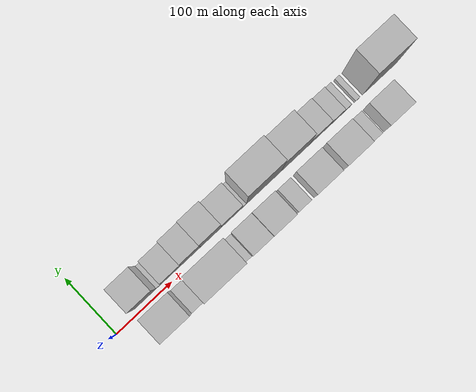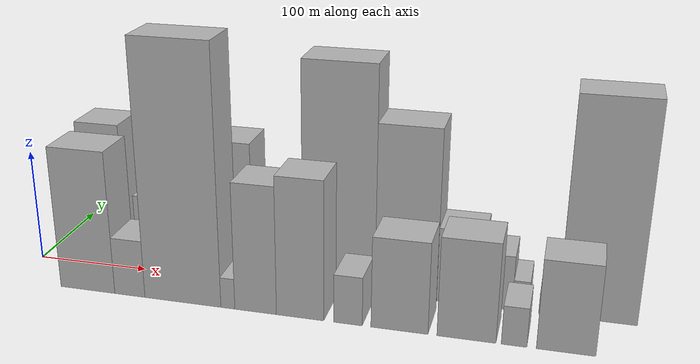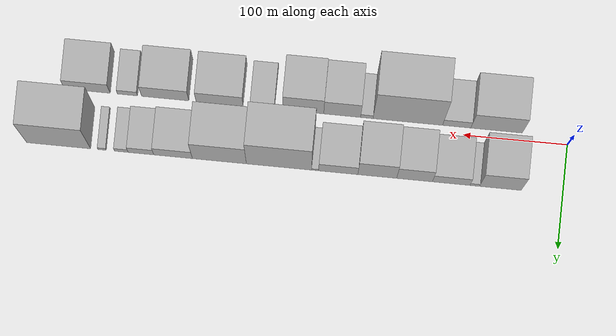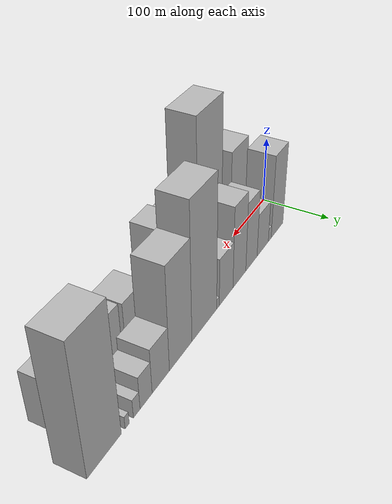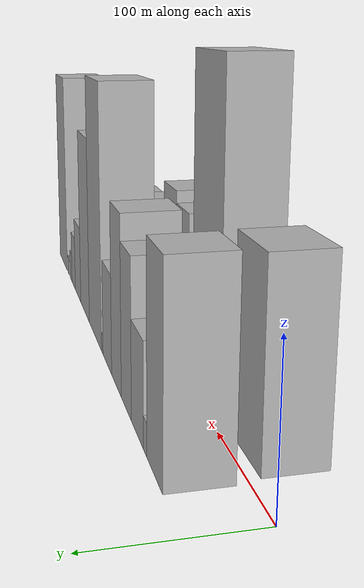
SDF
<sdf version="1.6">
 <world name="default">
  <scene>
   <sky><clouds><speed>12</speed></clouds></sky>
   <ambient>0.4 0.4 0.4 1</ambient>
   <background>0.7 0.7 0.7 1</background>
   <shadows>1</shadows>
  </scene>
  <gravity>0 0 -9.8066</gravity>
  <magnetic_field>6e-06 2.3e-05 -4.2e-05</magnetic_field>
  <physics default="0" name="default_physics" type="ode">
   <ode>
    <solver>
     <type>quick</type>
     <iters>10</iters>
     <sor>1.0</sor>
     <use_dynamic_moi_rescaling>0</use_dynamic_moi_rescaling>
    </solver>
    <constraints>
     <cfm>0</cfm>
     <erp>0.2</erp>
     <contact_max_correcting_vel>100</contact_max_correcting_vel>
     <contact_surface_layer>0.001</contact_surface_layer>
    </constraints>
   </ode>
   <max_step_size>0.004</max_step_size>
   <real_time_factor>1</real_time_factor>
   <real_time_update_rate>250</real_time_update_rate>
  </physics>
  <light name="sun" type="directional">
   <pose>0 0 10 0 0 0</pose>
   <diffuse>0.8 0.8 0.8 1</diffuse>
   <specular>0.2 0.2 0.2 1</specular>
   <attenuation>
    <range>1000</range>
    <constant>0.9</constant>
    <linear>0.01</linear>
    <quadratic>0.001</quadratic>
   </attenuation>
   <direction>-0.5 0.1 -0.9</direction>
  </light>
  <model name="building_1">
   <static>1</static>
   <pose>60.0380 27.5000 0 0.000000 0.000000 1.570796</pose>
   <link name="link">
    <pose>0 0 64.50 0 0 0</pose>
    <collision name="collision"><geometry><box><size>40.0000 40.0759 129.0000</size></box></geometry></collision>
    <visual name="visual">
     <cast_shadows>0</cast_shadows>
     <geometry><box><size>40.0000 40.0759 129.0000</size></box></geometry>
     <material>
      <script>
       <uri>model://HANNAS_wall/materials/scripts</uri>
       <uri>model://HANNAS_wall/materials/textures</uri>
       <name>vrc/HANNAS_wall</name>
      </script>
     </material>
    </visual>
   </link>
  </model>
  <model name="building_2">
   <static>1</static>
   <pose>84.7086 27.5000 0 0.000000 0.000000 1.570796</pose>
   <link name="link">
    <pose>0 0 10.50 0 0 0</pose>
    <collision name="collision"><geometry><box><size>40.0000 9.2653 21.0000</size></box></geometry></collision>
    <visual name="visual">
     <cast_shadows>0</cast_shadows>
     <geometry><box><size>40.0000 9.2653 21.0000</size></box></geometry>
     <material>
      <script>
       <uri>model://HANNAS_wall/materials/scripts</uri>
       <uri>model://HANNAS_wall/materials/textures</uri>
       <name>vrc/HANNAS_wall</name>
      </script>
     </material>
    </visual>
   </link>
  </model>
  <model name="building_3">
   <static>1</static>
   <pose>107.3640 27.5000 0 0.000000 0.000000 1.570796</pose>
   <link name="link">
    <pose>0 0 33.00 0 0 0</pose>
    <collision name="collision"><geometry><box><size>40.0000 36.0454 66.0000</size></box></geometry></collision>
    <visual name="visual">
     <cast_shadows>0</cast_shadows>
     <geometry><box><size>40.0000 36.0454 66.0000</size></box></geometry>
     <material>
      <script>
       <uri>model://HANNAS_wall/materials/scripts</uri>
       <uri>model://HANNAS_wall/materials/textures</uri>
       <name>vrc/HANNAS_wall</name>
      </script>
     </material>
    </visual>
   </link>
  </model>
  <model name="building_4">
   <static>1</static>
   <pose>142.6135 27.5000 0 0.000000 0.000000 1.570796</pose>
   <link name="link">
    <pose>0 0 52.50 0 0 0</pose>
    <collision name="collision"><geometry><box><size>40.0000 34.4536 105.0000</size></box></geometry></collision>
    <visual name="visual">
     <cast_shadows>0</cast_shadows>
     <geometry><box><size>40.0000 34.4536 105.0000</size></box></geometry>
     <material>
      <script>
       <uri>model://HANNAS_wall/materials/scripts</uri>
       <uri>model://HANNAS_wall/materials/textures</uri>
       <name>vrc/HANNAS_wall</name>
      </script>
     </material>
    </visual>
   </link>
  </model>
  <model name="building_5">
   <static>1</static>
   <pose>178.4815 27.5000 0 0.000000 0.000000 1.570796</pose>
   <link name="link">
    <pose>0 0 61.50 0 0 0</pose>
    <collision name="collision"><geometry><box><size>40.0000 37.2824 123.0000</size></box></geometry></collision>
    <visual name="visual">
     <cast_shadows>0</cast_shadows>
     <geometry><box><size>40.0000 37.2824 123.0000</size></box></geometry>
     <material>
      <script>
       <uri>model://HANNAS_wall/materials/scripts</uri>
       <uri>model://HANNAS_wall/materials/textures</uri>
       <name>vrc/HANNAS_wall</name>
      </script>
     </material>
    </visual>
   </link>
  </model>
  <model name="building_6">
   <static>1</static>
   <pose>215.9666 27.5000 0 0.000000 0.000000 1.570796</pose>
   <link name="link">
    <pose>0 0 36.00 0 0 0</pose>
    <collision name="collision"><geometry><box><size>40.0000 37.6877 72.0000</size></box></geometry></collision>
    <visual name="visual">
     <cast_shadows>0</cast_shadows>
     <geometry><box><size>40.0000 37.6877 72.0000</size></box></geometry>
     <material>
      <script>
       <uri>model://HANNAS_wall/materials/scripts</uri>
       <uri>model://HANNAS_wall/materials/textures</uri>
       <name>vrc/HANNAS_wall</name>
      </script>
     </material>
    </visual>
   </link>
  </model>
  <model name="building_7">
   <static>1</static>
   <pose>238.1888 27.5000 0 0.000000 0.000000 1.570796</pose>
   <link name="link">
    <pose>0 0 7.50 0 0 0</pose>
    <collision name="collision"><geometry><box><size>40.0000 6.7567 15.0000</size></box></geometry></collision>
    <visual name="visual">
     <cast_shadows>0</cast_shadows>
     <geometry><box><size>40.0000 6.7567 15.0000</size></box></geometry>
     <material>
      <script>
       <uri>model://HANNAS_wall/materials/scripts</uri>
       <uri>model://HANNAS_wall/materials/textures</uri>
       <name>vrc/HANNAS_wall</name>
      </script>
     </material>
    </visual>
   </link>
  </model>
  <model name="building_8">
   <static>1</static>
   <pose>272.8976 27.5000 0 0.000000 0.000000 1.570796</pose>
   <link name="link">
    <pose>0 0 99.00 0 0 0</pose>
    <collision name="collision"><geometry><box><size>40.0000 62.6610 198.0000</size></box></geometry></collision>
    <visual name="visual">
     <cast_shadows>0</cast_shadows>
     <geometry><box><size>40.0000 62.6610 198.0000</size></box></geometry>
     <material>
      <script>
       <uri>model://HANNAS_wall/materials/scripts</uri>
       <uri>model://HANNAS_wall/materials/textures</uri>
       <name>vrc/HANNAS_wall</name>
      </script>
     </material>
    </visual>
   </link>
  </model>
  <model name="building_9">
   <static>1</static>
   <pose>330.2017 27.5000 0 0.000000 0.000000 1.570796</pose>
   <link name="link">
    <pose>0 0 75.00 0 0 0</pose>
    <collision name="collision"><geometry><box><size>40.0000 51.9472 150.0000</size></box></geometry></collision>
    <visual name="visual">
     <cast_shadows>0</cast_shadows>
     <geometry><box><size>40.0000 51.9472 150.0000</size></box></geometry>
     <material>
      <script>
       <uri>model://HANNAS_wall/materials/scripts</uri>
       <uri>model://HANNAS_wall/materials/textures</uri>
       <name>vrc/HANNAS_wall</name>
      </script>
     </material>
    </visual>
   </link>
  </model>
  <model name="building_10">
   <static>1</static>
   <pose>374.7162 27.5000 0 0.000000 0.000000 1.570796</pose>
   <link name="link">
    <pose>0 0 33.00 0 0 0</pose>
    <collision name="collision"><geometry><box><size>40.0000 37.0818 66.0000</size></box></geometry></collision>
    <visual name="visual">
     <cast_shadows>0</cast_shadows>
     <geometry><box><size>40.0000 37.0818 66.0000</size></box></geometry>
     <material>
      <script>
       <uri>model://HANNAS_wall/materials/scripts</uri>
       <uri>model://HANNAS_wall/materials/textures</uri>
       <name>vrc/HANNAS_wall</name>
      </script>
     </material>
    </visual>
   </link>
  </model>
  <model name="building_11">
   <static>1</static>
   <pose>405.5777 27.5000 0 0.000000 0.000000 1.570796</pose>
   <link name="link">
    <pose>0 0 24.00 0 0 0</pose>
    <collision name="collision"><geometry><box><size>40.0000 24.6411 48.0000</size></box></geometry></collision>
    <visual name="visual">
     <cast_shadows>0</cast_shadows>
     <geometry><box><size>40.0000 24.6411 48.0000</size></box></geometry>
     <material>
      <script>
       <uri>model://HANNAS_wall/materials/scripts</uri>
       <uri>model://HANNAS_wall/materials/textures</uri>
       <name>vrc/HANNAS_wall</name>
      </script>
     </material>
    </visual>
   </link>
  </model>
  <model name="building_12">
   <static>1</static>
   <pose>424.4963 27.5000 0 0.000000 0.000000 1.570796</pose>
   <link name="link">
    <pose>0 0 13.50 0 0 0</pose>
    <collision name="collision"><geometry><box><size>40.0000 13.1961 27.0000</size></box></geometry></collision>
    <visual name="visual">
     <cast_shadows>0</cast_shadows>
     <geometry><box><size>40.0000 13.1961 27.0000</size></box></geometry>
     <material>
      <script>
       <uri>model://HANNAS_wall/materials/scripts</uri>
       <uri>model://HANNAS_wall/materials/textures</uri>
       <name>vrc/HANNAS_wall</name>
      </script>
     </material>
    </visual>
   </link>
  </model>
  <model name="building_13">
   <static>1</static>
   <pose>443.1050 27.5000 0 0.000000 0.000000 1.570796</pose>
   <link name="link">
    <pose>0 0 9.00 0 0 0</pose>
    <collision name="collision"><geometry><box><size>40.0000 8.0213 18.0000</size></box></geometry></collision>
    <visual name="visual">
     <cast_shadows>0</cast_shadows>
     <geometry><box><size>40.0000 8.0213 18.0000</size></box></geometry>
     <material>
      <script>
       <uri>model://HANNAS_wall/materials/scripts</uri>
       <uri>model://HANNAS_wall/materials/textures</uri>
       <name>vrc/HANNAS_wall</name>
      </script>
     </material>
    </visual>
   </link>
  </model>
  <model name="building_14">
   <static>1</static>
   <pose>484.8795 27.5000 0 0.000000 0.000000 1.570796</pose>
   <link name="link">
    <pose>0 0 93.00 0 0 0</pose>
    <collision name="collision"><geometry><box><size>40.0000 61.5275 186.0000</size></box></geometry></collision>
    <visual name="visual">
     <cast_shadows>0</cast_shadows>
     <geometry><box><size>40.0000 61.5275 186.0000</size></box></geometry>
     <material>
      <script>
       <uri>model://HANNAS_wall/materials/scripts</uri>
       <uri>model://HANNAS_wall/materials/textures</uri>
       <name>vrc/HANNAS_wall</name>
      </script>
     </material>
    </visual>
   </link>
  </model>
  <model name="building_15">
   <static>1</static>
   <pose>68.8182 -27.5000 0 0.000000 0.000000 1.570796</pose>
   <link name="link">
    <pose>0 0 63.00 0 0 0</pose>
    <collision name="collision"><geometry><box><size>40.0000 49.6365 126.0000</size></box></geometry></collision>
    <visual name="visual">
     <cast_shadows>0</cast_shadows>
     <geometry><box><size>40.0000 49.6365 126.0000</size></box></geometry>
     <material>
      <script>
       <uri>model://HANNAS_wall/materials/scripts</uri>
       <uri>model://HANNAS_wall/materials/textures</uri>
       <name>vrc/HANNAS_wall</name>
      </script>
     </material>
    </visual>
   </link>
  </model>
  <model name="building_16">
   <static>1</static>
   <pose>107.2414 -27.5000 0 0.000000 0.000000 1.570796</pose>
   <link name="link">
    <pose>0 0 25.50 0 0 0</pose>
    <collision name="collision"><geometry><box><size>40.0000 27.2099 51.0000</size></box></geometry></collision>
    <visual name="visual">
     <cast_shadows>0</cast_shadows>
     <geometry><box><size>40.0000 27.2099 51.0000</size></box></geometry>
     <material>
      <script>
       <uri>model://HANNAS_wall/materials/scripts</uri>
       <uri>model://HANNAS_wall/materials/textures</uri>
       <name>vrc/HANNAS_wall</name>
      </script>
     </material>
    </visual>
   </link>
  </model>
  <model name="building_17">
   <static>1</static>
   <pose>154.3168 -27.5000 0 0.000000 0.000000 1.570796</pose>
   <link name="link">
    <pose>0 0 111.00 0 0 0</pose>
    <collision name="collision"><geometry><box><size>40.0000 66.9409 222.0000</size></box></geometry></collision>
    <visual name="visual">
     <cast_shadows>0</cast_shadows>
     <geometry><box><size>40.0000 66.9409 222.0000</size></box></geometry>
     <material>
      <script>
       <uri>model://HANNAS_wall/materials/scripts</uri>
       <uri>model://HANNAS_wall/materials/textures</uri>
       <name>vrc/HANNAS_wall</name>
      </script>
     </material>
    </visual>
   </link>
  </model>
  <model name="building_18">
   <static>1</static>
   <pose>193.7803 -27.5000 0 0.000000 0.000000 1.570796</pose>
   <link name="link">
    <pose>0 0 13.50 0 0 0</pose>
    <collision name="collision"><geometry><box><size>40.0000 11.9861 27.0000</size></box></geometry></collision>
    <visual name="visual">
     <cast_shadows>0</cast_shadows>
     <geometry><box><size>40.0000 11.9861 27.0000</size></box></geometry>
     <material>
      <script>
       <uri>model://HANNAS_wall/materials/scripts</uri>
       <uri>model://HANNAS_wall/materials/textures</uri>
       <name>vrc/HANNAS_wall</name>
      </script>
     </material>
    </visual>
   </link>
  </model>
  <model name="building_19">
   <static>1</static>
   <pose>217.4618 -27.5000 0 0.000000 0.000000 1.570796</pose>
   <link name="link">
    <pose>0 0 55.50 0 0 0</pose>
    <collision name="collision"><geometry><box><size>40.0000 35.3767 111.0000</size></box></geometry></collision>
    <visual name="visual">
     <cast_shadows>0</cast_shadows>
     <geometry><box><size>40.0000 35.3767 111.0000</size></box></geometry>
     <material>
      <script>
       <uri>model://HANNAS_wall/materials/scripts</uri>
       <uri>model://HANNAS_wall/materials/textures</uri>
       <name>vrc/HANNAS_wall</name>
      </script>
     </material>
    </visual>
   </link>
  </model>
  <model name="building_20">
   <static>1</static>
   <pose>254.8208 -27.5000 0 0.000000 0.000000 1.570796</pose>
   <link name="link">
    <pose>0 0 60.00 0 0 0</pose>
    <collision name="collision"><geometry><box><size>40.0000 39.3413 120.0000</size></box></geometry></collision>
    <visual name="visual">
     <cast_shadows>0</cast_shadows>
     <geometry><box><size>40.0000 39.3413 120.0000</size></box></geometry>
     <material>
      <script>
       <uri>model://HANNAS_wall/materials/scripts</uri>
       <uri>model://HANNAS_wall/materials/textures</uri>
       <name>vrc/HANNAS_wall</name>
      </script>
     </material>
    </visual>
   </link>
  </model>
  <model name="building_21">
   <static>1</static>
   <pose>294.1522 -27.5000 0 0.000000 0.000000 1.570796</pose>
   <link name="link">
    <pose>0 0 21.00 0 0 0</pose>
    <collision name="collision"><geometry><box><size>40.0000 23.3217 42.0000</size></box></geometry></collision>
    <visual name="visual">
     <cast_shadows>0</cast_shadows>
     <geometry><box><size>40.0000 23.3217 42.0000</size></box></geometry>
     <material>
      <script>
       <uri>model://HANNAS_wall/materials/scripts</uri>
       <uri>model://HANNAS_wall/materials/textures</uri>
       <name>vrc/HANNAS_wall</name>
      </script>
     </material>
    </visual>
   </link>
  </model>
  <model name="building_22">
   <static>1</static>
   <pose>335.4431 -27.5000 0 0.000000 0.000000 1.570796</pose>
   <link name="link">
    <pose>0 0 39.00 0 0 0</pose>
    <collision name="collision"><geometry><box><size>40.0000 45.2601 78.0000</size></box></geometry></collision>
    <visual name="visual">
     <cast_shadows>0</cast_shadows>
     <geometry><box><size>40.0000 45.2601 78.0000</size></box></geometry>
     <material>
      <script>
       <uri>model://HANNAS_wall/materials/scripts</uri>
       <uri>model://HANNAS_wall/materials/textures</uri>
       <name>vrc/HANNAS_wall</name>
      </script>
     </material>
    </visual>
   </link>
  </model>
  <model name="building_23">
   <static>1</static>
   <pose>387.7600 -27.5000 0 0.000000 0.000000 1.570796</pose>
   <link name="link">
    <pose>0 0 42.00 0 0 0</pose>
    <collision name="collision"><geometry><box><size>40.0000 45.3736 84.0000</size></box></geometry></collision>
    <visual name="visual">
     <cast_shadows>0</cast_shadows>
     <geometry><box><size>40.0000 45.3736 84.0000</size></box></geometry>
     <material>
      <script>
       <uri>model://HANNAS_wall/materials/scripts</uri>
       <uri>model://HANNAS_wall/materials/textures</uri>
       <name>vrc/HANNAS_wall</name>
      </script>
     </material>
    </visual>
   </link>
  </model>
  <model name="building_24">
   <static>1</static>
   <pose>424.1152 -27.5000 0 0.000000 0.000000 1.570796</pose>
   <link name="link">
    <pose>0 0 16.50 0 0 0</pose>
    <collision name="collision"><geometry><box><size>40.0000 19.3367 33.0000</size></box></geometry></collision>
    <visual name="visual">
     <cast_shadows>0</cast_shadows>
     <geometry><box><size>40.0000 19.3367 33.0000</size></box></geometry>
     <material>
      <script>
       <uri>model://HANNAS_wall/materials/scripts</uri>
       <uri>model://HANNAS_wall/materials/textures</uri>
       <name>vrc/HANNAS_wall</name>
      </script>
     </material>
    </visual>
   </link>
  </model>
  <model name="building_25">
   <static>1</static>
   <pose>462.6840 -27.5000 0 0.000000 0.000000 1.570796</pose>
   <link name="link">
    <pose>0 0 37.50 0 0 0</pose>
    <collision name="collision"><geometry><box><size>40.0000 43.8010 75.0000</size></box></geometry></collision>
    <visual name="visual">
     <cast_shadows>0</cast_shadows>
     <geometry><box><size>40.0000 43.8010 75.0000</size></box></geometry>
     <material>
      <script>
       <uri>model://HANNAS_wall/materials/scripts</uri>
       <uri>model://HANNAS_wall/materials/textures</uri>
       <name>vrc/HANNAS_wall</name>
      </script>
     </material>
    </visual>
   </link>
  </model>
 </world>
</sdf>
